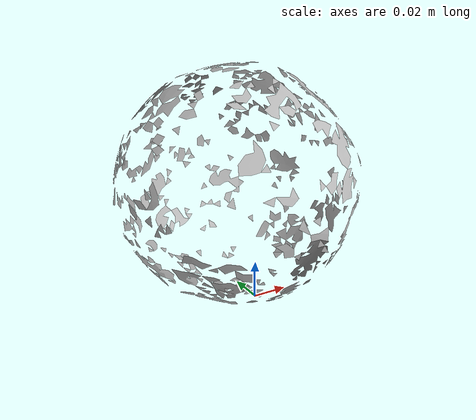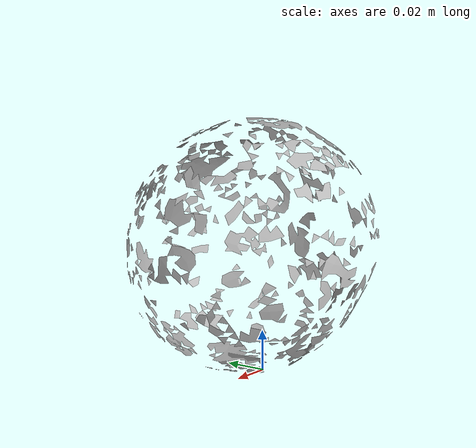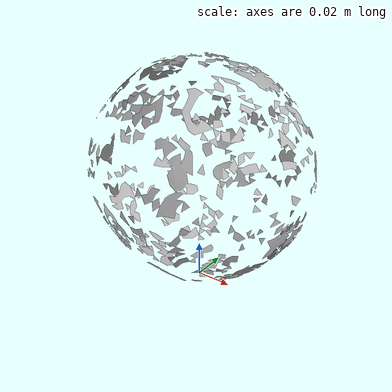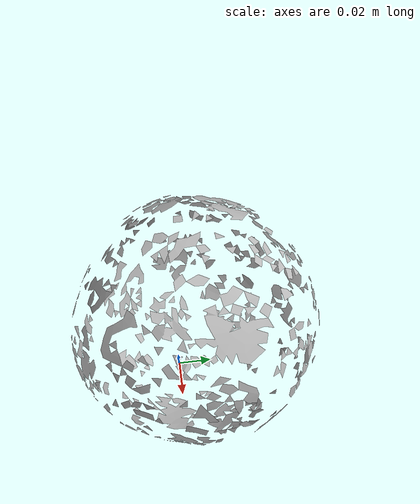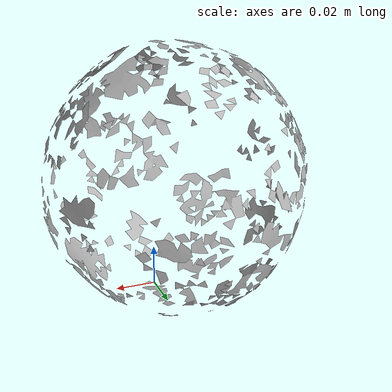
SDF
<?xml version="1.0" ?>
<sdf version="1.4">
  <model name='ycb_053_mini_soccer_ball'>
    <link name='body'>
      <inertial>
        <mass>0.123</mass>
        <pose>-0.00591259143145 0.0115305618014 0.0613155533905 0 0 0</pose>
        <inertia>
          <ixx>0.00019528110826</ixx>
          <ixy>1.22782118378e-06</ixy>
          <ixz>2.08950715463e-06</ixz>
          <iyy>0.000195681378984</iyy>
          <iyz>4.26617823389e-06</iyz>
          <izz>0.000195587066226</izz>
        </inertia>
      </inertial>
      <visual name='ycb_053_mini_soccer_ball_visual'>
        <pose>0 0 0 0 0 0</pose>
        <geometry>
          <mesh>
            <uri>model://ycb_053_mini_soccer_ball/meshes/textured.dae</uri>
          </mesh>
        </geometry>
      </visual>
      <collision name='ycb_053_mini_soccer_ball_collision'>
        <pose>0 0 0 0 0 0</pose>
        <geometry>
          <mesh>
            <uri>model://ycb_053_mini_soccer_ball/meshes/nontextured.stl</uri>
          </mesh>
        </geometry>
        <max_contacts>10</max_contacts>
      </collision>
    </link>
  </model>
</sdf>
